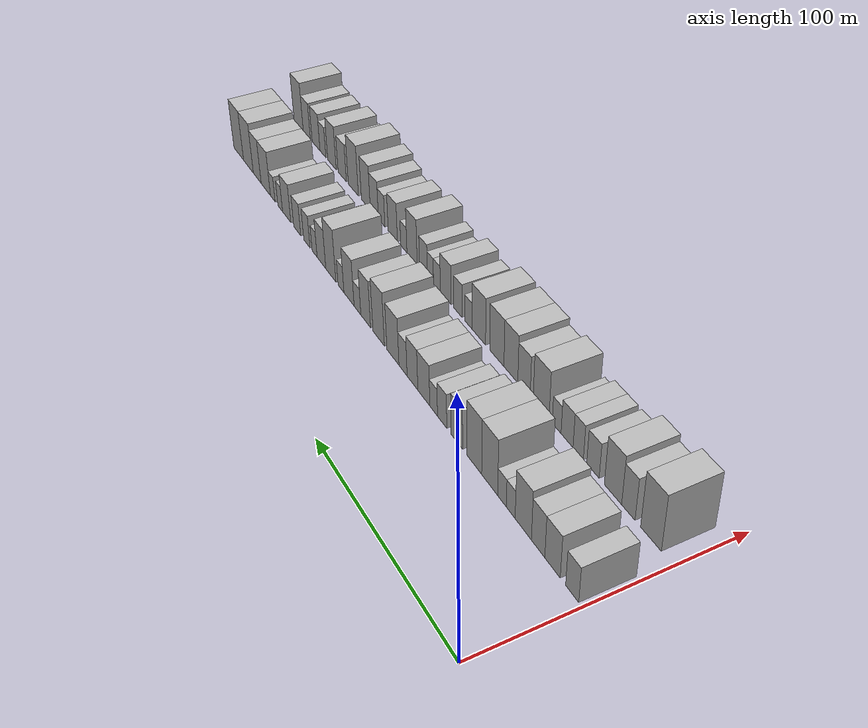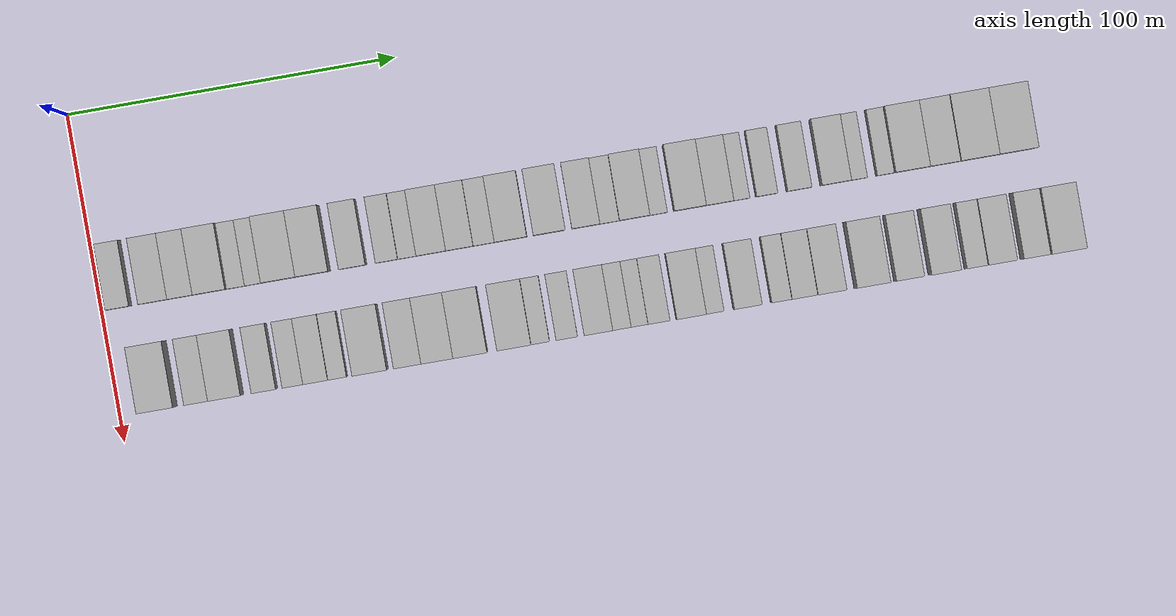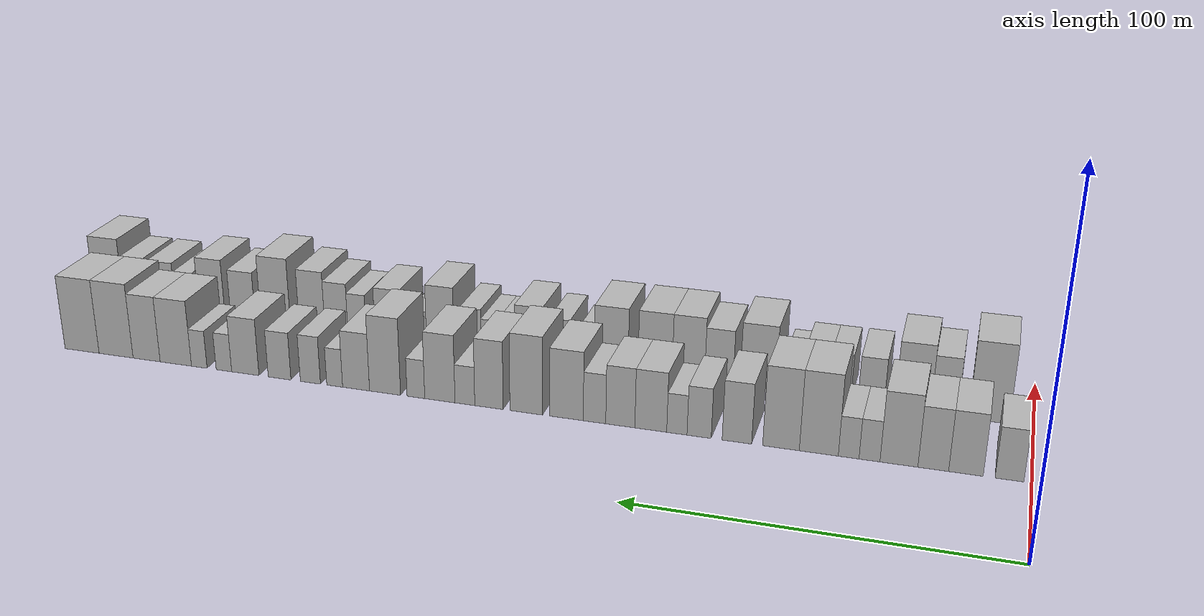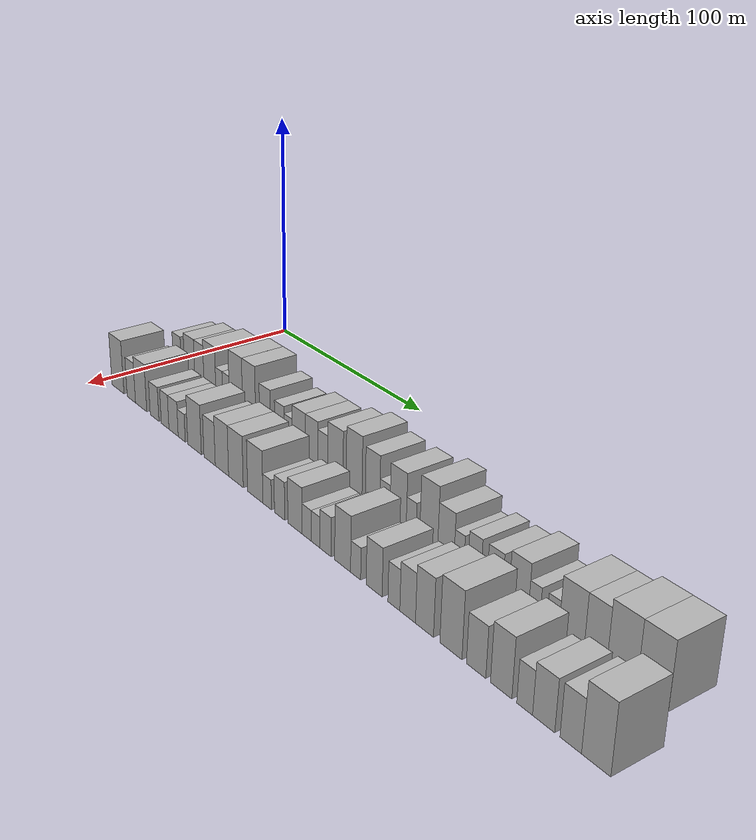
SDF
<sdf version="1.6">
 <world name="default">
  <model name="building_35">
   <static>1</static>
   <pose>50.0000 5.6101 0 0.000000 0.000000 0.000000</pose>
   <link name="link">
    <pose>0 0 7.50 0 0 0</pose>
    <collision name="collision"><geometry><box><size>20.0000 7.1993 15.0000</size></box></geometry></collision>
    <visual name="visual">
     <cast_shadows>0</cast_shadows>
     <geometry><box><size>20.0000 7.1993 15.0000</size></box></geometry>
     <material>
      <script>
       <uri>model://HANNAS_wall/materials/scripts</uri>
       <uri>model://HANNAS_wall/materials/textures</uri>
       <name>vrc/HANNAS_wall</name>
      </script>
     </material>
    </visual>
   </link>
  </model>
  <model name="building_36">
   <static>1</static>
   <pose>50.0000 16.6000 0 0.000000 0.000000 0.000000</pose>
   <link name="link">
    <pose>0 0 9.00 0 0 0</pose>
    <collision name="collision"><geometry><box><size>20.0000 8.7805 18.0000</size></box></geometry></collision>
    <visual name="visual">
     <cast_shadows>0</cast_shadows>
     <geometry><box><size>20.0000 8.7805 18.0000</size></box></geometry>
     <material>
      <script>
       <uri>model://HANNAS_wall/materials/scripts</uri>
       <uri>model://HANNAS_wall/materials/textures</uri>
       <name>vrc/HANNAS_wall</name>
      </script>
     </material>
    </visual>
   </link>
  </model>
  <model name="building_37">
   <static>1</static>
   <pose>50.0000 24.9277 0 0.000000 0.000000 0.000000</pose>
   <link name="link">
    <pose>0 0 9.00 0 0 0</pose>
    <collision name="collision"><geometry><box><size>20.0000 7.8750 18.0000</size></box></geometry></collision>
    <visual name="visual">
     <cast_shadows>0</cast_shadows>
     <geometry><box><size>20.0000 7.8750 18.0000</size></box></geometry>
     <material>
      <script>
       <uri>model://HANNAS_wall/materials/scripts</uri>
       <uri>model://HANNAS_wall/materials/textures</uri>
       <name>vrc/HANNAS_wall</name>
      </script>
     </material>
    </visual>
   </link>
  </model>
  <model name="building_38">
   <static>1</static>
   <pose>50.0000 33.7858 0 0.000000 0.000000 0.000000</pose>
   <link name="link">
    <pose>0 0 10.50 0 0 0</pose>
    <collision name="collision"><geometry><box><size>20.0000 9.8412 21.0000</size></box></geometry></collision>
    <visual name="visual">
     <cast_shadows>0</cast_shadows>
     <geometry><box><size>20.0000 9.8412 21.0000</size></box></geometry>
     <material>
      <script>
       <uri>model://HANNAS_wall/materials/scripts</uri>
       <uri>model://HANNAS_wall/materials/textures</uri>
       <name>vrc/HANNAS_wall</name>
      </script>
     </material>
    </visual>
   </link>
  </model>
  <model name="building_39">
   <static>1</static>
   <pose>50.0000 41.4476 0 0.000000 0.000000 0.000000</pose>
   <link name="link">
    <pose>0 0 6.00 0 0 0</pose>
    <collision name="collision"><geometry><box><size>20.0000 5.4823 12.0000</size></box></geometry></collision>
    <visual name="visual">
     <cast_shadows>0</cast_shadows>
     <geometry><box><size>20.0000 5.4823 12.0000</size></box></geometry>
     <material>
      <script>
       <uri>model://HANNAS_wall/materials/scripts</uri>
       <uri>model://HANNAS_wall/materials/textures</uri>
       <name>vrc/HANNAS_wall</name>
      </script>
     </material>
    </visual>
   </link>
  </model>
  <model name="building_40">
   <static>1</static>
   <pose>50.0000 46.9185 0 0.000000 0.000000 0.000000</pose>
   <link name="link">
    <pose>0 0 6.00 0 0 0</pose>
    <collision name="collision"><geometry><box><size>20.0000 5.4595 12.0000</size></box></geometry></collision>
    <visual name="visual">
     <cast_shadows>0</cast_shadows>
     <geometry><box><size>20.0000 5.4595 12.0000</size></box></geometry>
     <material>
      <script>
       <uri>model://HANNAS_wall/materials/scripts</uri>
       <uri>model://HANNAS_wall/materials/textures</uri>
       <name>vrc/HANNAS_wall</name>
      </script>
     </material>
    </visual>
   </link>
  </model>
  <model name="building_41">
   <static>1</static>
   <pose>50.0000 54.8365 0 0.000000 0.000000 0.000000</pose>
   <link name="link">
    <pose>0 0 12.00 0 0 0</pose>
    <collision name="collision"><geometry><box><size>20.0000 10.3765 24.0000</size></box></geometry></collision>
    <visual name="visual">
     <cast_shadows>0</cast_shadows>
     <geometry><box><size>20.0000 10.3765 24.0000</size></box></geometry>
     <material>
      <script>
       <uri>model://HANNAS_wall/materials/scripts</uri>
       <uri>model://HANNAS_wall/materials/textures</uri>
       <name>vrc/HANNAS_wall</name>
      </script>
     </material>
    </visual>
   </link>
  </model>
  <model name="building_42">
   <static>1</static>
   <pose>50.0000 64.9680 0 0.000000 0.000000 0.000000</pose>
   <link name="link">
    <pose>0 0 12.00 0 0 0</pose>
    <collision name="collision"><geometry><box><size>20.0000 9.8864 24.0000</size></box></geometry></collision>
    <visual name="visual">
     <cast_shadows>0</cast_shadows>
     <geometry><box><size>20.0000 9.8864 24.0000</size></box></geometry>
     <material>
      <script>
       <uri>model://HANNAS_wall/materials/scripts</uri>
       <uri>model://HANNAS_wall/materials/textures</uri>
       <name>vrc/HANNAS_wall</name>
      </script>
     </material>
    </visual>
   </link>
  </model>
  <model name="building_43">
   <static>1</static>
   <pose>50.0000 76.9545 0 0.000000 0.000000 0.000000</pose>
   <link name="link">
    <pose>0 0 9.00 0 0 0</pose>
    <collision name="collision"><geometry><box><size>20.0000 8.0864 18.0000</size></box></geometry></collision>
    <visual name="visual">
     <cast_shadows>0</cast_shadows>
     <geometry><box><size>20.0000 8.0864 18.0000</size></box></geometry>
     <material>
      <script>
       <uri>model://HANNAS_wall/materials/scripts</uri>
       <uri>model://HANNAS_wall/materials/textures</uri>
       <name>vrc/HANNAS_wall</name>
      </script>
     </material>
    </visual>
   </link>
  </model>
  <model name="building_44">
   <static>1</static>
   <pose>50.0000 87.3524 0 0.000000 0.000000 0.000000</pose>
   <link name="link">
    <pose>0 0 7.50 0 0 0</pose>
    <collision name="collision"><geometry><box><size>20.0000 6.7096 15.0000</size></box></geometry></collision>
    <visual name="visual">
     <cast_shadows>0</cast_shadows>
     <geometry><box><size>20.0000 6.7096 15.0000</size></box></geometry>
     <material>
      <script>
       <uri>model://HANNAS_wall/materials/scripts</uri>
       <uri>model://HANNAS_wall/materials/textures</uri>
       <name>vrc/HANNAS_wall</name>
      </script>
     </material>
    </visual>
   </link>
  </model>
  <model name="building_45">
   <static>1</static>
   <pose>50.0000 93.5424 0 0.000000 0.000000 0.000000</pose>
   <link name="link">
    <pose>0 0 6.00 0 0 0</pose>
    <collision name="collision"><geometry><box><size>20.0000 5.6704 12.0000</size></box></geometry></collision>
    <visual name="visual">
     <cast_shadows>0</cast_shadows>
     <geometry><box><size>20.0000 5.6704 12.0000</size></box></geometry>
     <material>
      <script>
       <uri>model://HANNAS_wall/materials/scripts</uri>
       <uri>model://HANNAS_wall/materials/textures</uri>
       <name>vrc/HANNAS_wall</name>
      </script>
     </material>
    </visual>
   </link>
  </model>
  <model name="building_46">
   <static>1</static>
   <pose>50.0000 100.8718 0 0.000000 0.000000 0.000000</pose>
   <link name="link">
    <pose>0 0 9.00 0 0 0</pose>
    <collision name="collision"><geometry><box><size>20.0000 8.9884 18.0000</size></box></geometry></collision>
    <visual name="visual">
     <cast_shadows>0</cast_shadows>
     <geometry><box><size>20.0000 8.9884 18.0000</size></box></geometry>
     <material>
      <script>
       <uri>model://HANNAS_wall/materials/scripts</uri>
       <uri>model://HANNAS_wall/materials/textures</uri>
       <name>vrc/HANNAS_wall</name>
      </script>
     </material>
    </visual>
   </link>
  </model>
  <model name="building_47">
   <static>1</static>
   <pose>50.0000 109.5122 0 0.000000 0.000000 0.000000</pose>
   <link name="link">
    <pose>0 0 9.00 0 0 0</pose>
    <collision name="collision"><geometry><box><size>20.0000 8.2924 18.0000</size></box></geometry></collision>
    <visual name="visual">
     <cast_shadows>0</cast_shadows>
     <geometry><box><size>20.0000 8.2924 18.0000</size></box></geometry>
     <material>
      <script>
       <uri>model://HANNAS_wall/materials/scripts</uri>
       <uri>model://HANNAS_wall/materials/textures</uri>
       <name>vrc/HANNAS_wall</name>
      </script>
     </material>
    </visual>
   </link>
  </model>
  <model name="building_48">
   <static>1</static>
   <pose>50.0000 116.8847 0 0.000000 0.000000 0.000000</pose>
   <link name="link">
    <pose>0 0 7.50 0 0 0</pose>
    <collision name="collision"><geometry><box><size>20.0000 6.4528 15.0000</size></box></geometry></collision>
    <visual name="visual">
     <cast_shadows>0</cast_shadows>
     <geometry><box><size>20.0000 6.4528 15.0000</size></box></geometry>
     <material>
      <script>
       <uri>model://HANNAS_wall/materials/scripts</uri>
       <uri>model://HANNAS_wall/materials/textures</uri>
       <name>vrc/HANNAS_wall</name>
      </script>
     </material>
    </visual>
   </link>
  </model>
  <model name="building_49">
   <static>1</static>
   <pose>50.0000 125.0088 0 0.000000 0.000000 0.000000</pose>
   <link name="link">
    <pose>0 0 10.50 0 0 0</pose>
    <collision name="collision"><geometry><box><size>20.0000 9.7953 21.0000</size></box></geometry></collision>
    <visual name="visual">
     <cast_shadows>0</cast_shadows>
     <geometry><box><size>20.0000 9.7953 21.0000</size></box></geometry>
     <material>
      <script>
       <uri>model://HANNAS_wall/materials/scripts</uri>
       <uri>model://HANNAS_wall/materials/textures</uri>
       <name>vrc/HANNAS_wall</name>
      </script>
     </material>
    </visual>
   </link>
  </model>
  <model name="building_50">
   <static>1</static>
   <pose>50.0000 136.7329 0 0.000000 0.000000 0.000000</pose>
   <link name="link">
    <pose>0 0 12.00 0 0 0</pose>
    <collision name="collision"><geometry><box><size>20.0000 9.6528 24.0000</size></box></geometry></collision>
    <visual name="visual">
     <cast_shadows>0</cast_shadows>
     <geometry><box><size>20.0000 9.6528 24.0000</size></box></geometry>
     <material>
      <script>
       <uri>model://HANNAS_wall/materials/scripts</uri>
       <uri>model://HANNAS_wall/materials/textures</uri>
       <name>vrc/HANNAS_wall</name>
      </script>
     </material>
    </visual>
   </link>
  </model>
  <model name="building_51">
   <static>1</static>
   <pose>50.0000 147.7941 0 0.000000 0.000000 0.000000</pose>
   <link name="link">
    <pose>0 0 10.50 0 0 0</pose>
    <collision name="collision"><geometry><box><size>20.0000 8.4696 21.0000</size></box></geometry></collision>
    <visual name="visual">
     <cast_shadows>0</cast_shadows>
     <geometry><box><size>20.0000 8.4696 21.0000</size></box></geometry>
     <material>
      <script>
       <uri>model://HANNAS_wall/materials/scripts</uri>
       <uri>model://HANNAS_wall/materials/textures</uri>
       <name>vrc/HANNAS_wall</name>
      </script>
     </material>
    </visual>
   </link>
  </model>
  <model name="building_52">
   <static>1</static>
   <pose>50.0000 154.9995 0 0.000000 0.000000 0.000000</pose>
   <link name="link">
    <pose>0 0 6.00 0 0 0</pose>
    <collision name="collision"><geometry><box><size>20.0000 5.9412 12.0000</size></box></geometry></collision>
    <visual name="visual">
     <cast_shadows>0</cast_shadows>
     <geometry><box><size>20.0000 5.9412 12.0000</size></box></geometry>
     <material>
      <script>
       <uri>model://HANNAS_wall/materials/scripts</uri>
       <uri>model://HANNAS_wall/materials/textures</uri>
       <name>vrc/HANNAS_wall</name>
      </script>
     </material>
    </visual>
   </link>
  </model>
  <model name="building_53">
   <static>1</static>
   <pose>50.0000 162.5685 0 0.000000 0.000000 0.000000</pose>
   <link name="link">
    <pose>0 0 10.50 0 0 0</pose>
    <collision name="collision"><geometry><box><size>20.0000 9.1968 21.0000</size></box></geometry></collision>
    <visual name="visual">
     <cast_shadows>0</cast_shadows>
     <geometry><box><size>20.0000 9.1968 21.0000</size></box></geometry>
     <material>
      <script>
       <uri>model://HANNAS_wall/materials/scripts</uri>
       <uri>model://HANNAS_wall/materials/textures</uri>
       <name>vrc/HANNAS_wall</name>
      </script>
     </material>
    </visual>
   </link>
  </model>
  <model name="building_54">
   <static>1</static>
   <pose>50.0000 169.8707 0 0.000000 0.000000 0.000000</pose>
   <link name="link">
    <pose>0 0 6.00 0 0 0</pose>
    <collision name="collision"><geometry><box><size>20.0000 5.4076 12.0000</size></box></geometry></collision>
    <visual name="visual">
     <cast_shadows>0</cast_shadows>
     <geometry><box><size>20.0000 5.4076 12.0000</size></box></geometry>
     <material>
      <script>
       <uri>model://HANNAS_wall/materials/scripts</uri>
       <uri>model://HANNAS_wall/materials/textures</uri>
       <name>vrc/HANNAS_wall</name>
      </script>
     </material>
    </visual>
   </link>
  </model>
  <model name="building_55">
   <static>1</static>
   <pose>50.0000 179.3755 0 0.000000 0.000000 0.000000</pose>
   <link name="link">
    <pose>0 0 12.00 0 0 0</pose>
    <collision name="collision"><geometry><box><size>20.0000 9.6021 24.0000</size></box></geometry></collision>
    <visual name="visual">
     <cast_shadows>0</cast_shadows>
     <geometry><box><size>20.0000 9.6021 24.0000</size></box></geometry>
     <material>
      <script>
       <uri>model://HANNAS_wall/materials/scripts</uri>
       <uri>model://HANNAS_wall/materials/textures</uri>
       <name>vrc/HANNAS_wall</name>
      </script>
     </material>
    </visual>
   </link>
  </model>
  <model name="building_56">
   <static>1</static>
   <pose>50.0000 188.3957 0 0.000000 0.000000 0.000000</pose>
   <link name="link">
    <pose>0 0 9.00 0 0 0</pose>
    <collision name="collision"><geometry><box><size>20.0000 8.4381 18.0000</size></box></geometry></collision>
    <visual name="visual">
     <cast_shadows>0</cast_shadows>
     <geometry><box><size>20.0000 8.4381 18.0000</size></box></geometry>
     <material>
      <script>
       <uri>model://HANNAS_wall/materials/scripts</uri>
       <uri>model://HANNAS_wall/materials/textures</uri>
       <name>vrc/HANNAS_wall</name>
      </script>
     </material>
    </visual>
   </link>
  </model>
  <model name="building_57">
   <static>1</static>
   <pose>50.0000 195.1093 0 0.000000 0.000000 0.000000</pose>
   <link name="link">
    <pose>0 0 6.00 0 0 0</pose>
    <collision name="collision"><geometry><box><size>20.0000 4.9891 12.0000</size></box></geometry></collision>
    <visual name="visual">
     <cast_shadows>0</cast_shadows>
     <geometry><box><size>20.0000 4.9891 12.0000</size></box></geometry>
     <material>
      <script>
       <uri>model://HANNAS_wall/materials/scripts</uri>
       <uri>model://HANNAS_wall/materials/textures</uri>
       <name>vrc/HANNAS_wall</name>
      </script>
     </material>
    </visual>
   </link>
  </model>
  <model name="building_58">
   <static>1</static>
   <pose>50.0000 202.8008 0 0.000000 0.000000 0.000000</pose>
   <link name="link">
    <pose>0 0 7.50 0 0 0</pose>
    <collision name="collision"><geometry><box><size>20.0000 6.3939 15.0000</size></box></geometry></collision>
    <visual name="visual">
     <cast_shadows>0</cast_shadows>
     <geometry><box><size>20.0000 6.3939 15.0000</size></box></geometry>
     <material>
      <script>
       <uri>model://HANNAS_wall/materials/scripts</uri>
       <uri>model://HANNAS_wall/materials/textures</uri>
       <name>vrc/HANNAS_wall</name>
      </script>
     </material>
    </visual>
   </link>
  </model>
  <model name="building_59">
   <static>1</static>
   <pose>50.0000 212.6606 0 0.000000 0.000000 0.000000</pose>
   <link name="link">
    <pose>0 0 7.50 0 0 0</pose>
    <collision name="collision"><geometry><box><size>20.0000 7.3258 15.0000</size></box></geometry></collision>
    <visual name="visual">
     <cast_shadows>0</cast_shadows>
     <geometry><box><size>20.0000 7.3258 15.0000</size></box></geometry>
     <material>
      <script>
       <uri>model://HANNAS_wall/materials/scripts</uri>
       <uri>model://HANNAS_wall/materials/textures</uri>
       <name>vrc/HANNAS_wall</name>
      </script>
     </material>
    </visual>
   </link>
  </model>
  <model name="building_60">
   <static>1</static>
   <pose>50.0000 223.7670 0 0.000000 0.000000 0.000000</pose>
   <link name="link">
    <pose>0 0 9.00 0 0 0</pose>
    <collision name="collision"><geometry><box><size>20.0000 8.8869 18.0000</size></box></geometry></collision>
    <visual name="visual">
     <cast_shadows>0</cast_shadows>
     <geometry><box><size>20.0000 8.8869 18.0000</size></box></geometry>
     <material>
      <script>
       <uri>model://HANNAS_wall/materials/scripts</uri>
       <uri>model://HANNAS_wall/materials/textures</uri>
       <name>vrc/HANNAS_wall</name>
      </script>
     </material>
    </visual>
   </link>
  </model>
  <model name="building_61">
   <static>1</static>
   <pose>50.0000 230.7585 0 0.000000 0.000000 0.000000</pose>
   <link name="link">
    <pose>0 0 6.00 0 0 0</pose>
    <collision name="collision"><geometry><box><size>20.0000 5.0961 12.0000</size></box></geometry></collision>
    <visual name="visual">
     <cast_shadows>0</cast_shadows>
     <geometry><box><size>20.0000 5.0961 12.0000</size></box></geometry>
     <material>
      <script>
       <uri>model://HANNAS_wall/materials/scripts</uri>
       <uri>model://HANNAS_wall/materials/textures</uri>
       <name>vrc/HANNAS_wall</name>
      </script>
     </material>
    </visual>
   </link>
  </model>
  <model name="building_62">
   <static>1</static>
   <pose>50.0000 238.8910 0 0.000000 0.000000 0.000000</pose>
   <link name="link">
    <pose>0 0 6.00 0 0 0</pose>
    <collision name="collision"><geometry><box><size>20.0000 5.1690 12.0000</size></box></geometry></collision>
    <visual name="visual">
     <cast_shadows>0</cast_shadows>
     <geometry><box><size>20.0000 5.1690 12.0000</size></box></geometry>
     <material>
      <script>
       <uri>model://HANNAS_wall/materials/scripts</uri>
       <uri>model://HANNAS_wall/materials/textures</uri>
       <name>vrc/HANNAS_wall</name>
      </script>
     </material>
    </visual>
   </link>
  </model>
  <model name="building_63">
   <static>1</static>
   <pose>50.0000 246.7167 0 0.000000 0.000000 0.000000</pose>
   <link name="link">
    <pose>0 0 10.50 0 0 0</pose>
    <collision name="collision"><geometry><box><size>20.0000 10.4825 21.0000</size></box></geometry></collision>
    <visual name="visual">
     <cast_shadows>0</cast_shadows>
     <geometry><box><size>20.0000 10.4825 21.0000</size></box></geometry>
     <material>
      <script>
       <uri>model://HANNAS_wall/materials/scripts</uri>
       <uri>model://HANNAS_wall/materials/textures</uri>
       <name>vrc/HANNAS_wall</name>
      </script>
     </material>
    </visual>
   </link>
  </model>
  <model name="building_64">
   <static>1</static>
   <pose>50.0000 256.5329 0 0.000000 0.000000 0.000000</pose>
   <link name="link">
    <pose>0 0 10.50 0 0 0</pose>
    <collision name="collision"><geometry><box><size>20.0000 9.1499 21.0000</size></box></geometry></collision>
    <visual name="visual">
     <cast_shadows>0</cast_shadows>
     <geometry><box><size>20.0000 9.1499 21.0000</size></box></geometry>
     <material>
      <script>
       <uri>model://HANNAS_wall/materials/scripts</uri>
       <uri>model://HANNAS_wall/materials/textures</uri>
       <name>vrc/HANNAS_wall</name>
      </script>
     </material>
    </visual>
   </link>
  </model>
  <model name="building_65">
   <static>1</static>
   <pose>50.0000 266.9230 0 0.000000 0.000000 0.000000</pose>
   <link name="link">
    <pose>0 0 12.00 0 0 0</pose>
    <collision name="collision"><geometry><box><size>20.0000 11.6303 24.0000</size></box></geometry></collision>
    <visual name="visual">
     <cast_shadows>0</cast_shadows>
     <geometry><box><size>20.0000 11.6303 24.0000</size></box></geometry>
     <material>
      <script>
       <uri>model://HANNAS_wall/materials/scripts</uri>
       <uri>model://HANNAS_wall/materials/textures</uri>
       <name>vrc/HANNAS_wall</name>
      </script>
     </material>
    </visual>
   </link>
  </model>
  <model name="building_66">
   <static>1</static>
   <pose>50.0000 278.6214 0 0.000000 0.000000 0.000000</pose>
   <link name="link">
    <pose>0 0 12.00 0 0 0</pose>
    <collision name="collision"><geometry><box><size>20.0000 11.7666 24.0000</size></box></geometry></collision>
    <visual name="visual">
     <cast_shadows>0</cast_shadows>
     <geometry><box><size>20.0000 11.7666 24.0000</size></box></geometry>
     <material>
      <script>
       <uri>model://HANNAS_wall/materials/scripts</uri>
       <uri>model://HANNAS_wall/materials/textures</uri>
       <name>vrc/HANNAS_wall</name>
      </script>
     </material>
    </visual>
   </link>
  </model>
  <model name="building_96">
   <static>1</static>
   <pose>82.0000 12.0418 0 0.000000 0.000000 0.000000</pose>
   <link name="link">
    <pose>0 0 12.00 0 0 0</pose>
    <collision name="collision"><geometry><box><size>20.0000 11.0157 24.0000</size></box></geometry></collision>
    <visual name="visual">
     <cast_shadows>0</cast_shadows>
     <geometry><box><size>20.0000 11.0157 24.0000</size></box></geometry>
     <material>
      <script>
       <uri>model://HANNAS_wall/materials/scripts</uri>
       <uri>model://HANNAS_wall/materials/textures</uri>
       <name>vrc/HANNAS_wall</name>
      </script>
     </material>
    </visual>
   </link>
  </model>
  <model name="building_97">
   <static>1</static>
   <pose>82.0000 24.2548 0 0.000000 0.000000 0.000000</pose>
   <link name="link">
    <pose>0 0 9.00 0 0 0</pose>
    <collision name="collision"><geometry><box><size>20.0000 7.4104 18.0000</size></box></geometry></collision>
    <visual name="visual">
     <cast_shadows>0</cast_shadows>
     <geometry><box><size>20.0000 7.4104 18.0000</size></box></geometry>
     <material>
      <script>
       <uri>model://HANNAS_wall/materials/scripts</uri>
       <uri>model://HANNAS_wall/materials/textures</uri>
       <name>vrc/HANNAS_wall</name>
      </script>
     </material>
    </visual>
   </link>
  </model>
  <model name="building_98">
   <static>1</static>
   <pose>82.0000 32.8803 0 0.000000 0.000000 0.000000</pose>
   <link name="link">
    <pose>0 0 10.50 0 0 0</pose>
    <collision name="collision"><geometry><box><size>20.0000 9.8405 21.0000</size></box></geometry></collision>
    <visual name="visual">
     <cast_shadows>0</cast_shadows>
     <geometry><box><size>20.0000 9.8405 21.0000</size></box></geometry>
     <material>
      <script>
       <uri>model://HANNAS_wall/materials/scripts</uri>
       <uri>model://HANNAS_wall/materials/textures</uri>
       <name>vrc/HANNAS_wall</name>
      </script>
     </material>
    </visual>
   </link>
  </model>
  <model name="building_99">
   <static>1</static>
   <pose>82.0000 44.4847 0 0.000000 0.000000 0.000000</pose>
   <link name="link">
    <pose>0 0 7.50 0 0 0</pose>
    <collision name="collision"><geometry><box><size>20.0000 7.3682 15.0000</size></box></geometry></collision>
    <visual name="visual">
     <cast_shadows>0</cast_shadows>
     <geometry><box><size>20.0000 7.3682 15.0000</size></box></geometry>
     <material>
      <script>
       <uri>model://HANNAS_wall/materials/scripts</uri>
       <uri>model://HANNAS_wall/materials/textures</uri>
       <name>vrc/HANNAS_wall</name>
      </script>
     </material>
    </visual>
   </link>
  </model>
  <model name="building_100">
   <static>1</static>
   <pose>82.0000 53.3110 0 0.000000 0.000000 0.000000</pose>
   <link name="link">
    <pose>0 0 7.50 0 0 0</pose>
    <collision name="collision"><geometry><box><size>20.0000 6.2844 15.0000</size></box></geometry></collision>
    <visual name="visual">
     <cast_shadows>0</cast_shadows>
     <geometry><box><size>20.0000 6.2844 15.0000</size></box></geometry>
     <material>
      <script>
       <uri>model://HANNAS_wall/materials/scripts</uri>
       <uri>model://HANNAS_wall/materials/textures</uri>
       <name>vrc/HANNAS_wall</name>
      </script>
     </material>
    </visual>
   </link>
  </model>
  <model name="building_101">
   <static>1</static>
   <pose>82.0000 60.1928 0 0.000000 0.000000 0.000000</pose>
   <link name="link">
    <pose>0 0 7.50 0 0 0</pose>
    <collision name="collision"><geometry><box><size>20.0000 7.4792 15.0000</size></box></geometry></collision>
    <visual name="visual">
     <cast_shadows>0</cast_shadows>
     <geometry><box><size>20.0000 7.4792 15.0000</size></box></geometry>
     <material>
      <script>
       <uri>model://HANNAS_wall/materials/scripts</uri>
       <uri>model://HANNAS_wall/materials/textures</uri>
       <name>vrc/HANNAS_wall</name>
      </script>
     </material>
    </visual>
   </link>
  </model>
  <model name="building_102">
   <static>1</static>
   <pose>82.0000 66.7406 0 0.000000 0.000000 0.000000</pose>
   <link name="link">
    <pose>0 0 6.00 0 0 0</pose>
    <collision name="collision"><geometry><box><size>20.0000 5.6164 12.0000</size></box></geometry></collision>
    <visual name="visual">
     <cast_shadows>0</cast_shadows>
     <geometry><box><size>20.0000 5.6164 12.0000</size></box></geometry>
     <material>
      <script>
       <uri>model://HANNAS_wall/materials/scripts</uri>
       <uri>model://HANNAS_wall/materials/textures</uri>
       <name>vrc/HANNAS_wall</name>
      </script>
     </material>
    </visual>
   </link>
  </model>
  <model name="building_103">
   <static>1</static>
   <pose>82.0000 76.7727 0 0.000000 0.000000 0.000000</pose>
   <link name="link">
    <pose>0 0 10.50 0 0 0</pose>
    <collision name="collision"><geometry><box><size>20.0000 10.4478 21.0000</size></box></geometry></collision>
    <visual name="visual">
     <cast_shadows>0</cast_shadows>
     <geometry><box><size>20.0000 10.4478 21.0000</size></box></geometry>
     <material>
      <script>
       <uri>model://HANNAS_wall/materials/scripts</uri>
       <uri>model://HANNAS_wall/materials/textures</uri>
       <name>vrc/HANNAS_wall</name>
      </script>
     </material>
    </visual>
   </link>
  </model>
  <model name="building_104">
   <static>1</static>
   <pose>82.0000 88.1966 0 0.000000 0.000000 0.000000</pose>
   <link name="link">
    <pose>0 0 9.00 0 0 0</pose>
    <collision name="collision"><geometry><box><size>20.0000 8.4000 18.0000</size></box></geometry></collision>
    <visual name="visual">
     <cast_shadows>0</cast_shadows>
     <geometry><box><size>20.0000 8.4000 18.0000</size></box></geometry>
     <material>
      <script>
       <uri>model://HANNAS_wall/materials/scripts</uri>
       <uri>model://HANNAS_wall/materials/textures</uri>
       <name>vrc/HANNAS_wall</name>
      </script>
     </material>
    </visual>
   </link>
  </model>
  <model name="building_105">
   <static>1</static>
   <pose>82.0000 97.2258 0 0.000000 0.000000 0.000000</pose>
   <link name="link">
    <pose>0 0 10.50 0 0 0</pose>
    <collision name="collision"><geometry><box><size>20.0000 9.6583 21.0000</size></box></geometry></collision>
    <visual name="visual">
     <cast_shadows>0</cast_shadows>
     <geometry><box><size>20.0000 9.6583 21.0000</size></box></geometry>
     <material>
      <script>
       <uri>model://HANNAS_wall/materials/scripts</uri>
       <uri>model://HANNAS_wall/materials/textures</uri>
       <name>vrc/HANNAS_wall</name>
      </script>
     </material>
    </visual>
   </link>
  </model>
  <model name="building_106">
   <static>1</static>
   <pose>82.0000 107.1942 0 0.000000 0.000000 0.000000</pose>
   <link name="link">
    <pose>0 0 10.50 0 0 0</pose>
    <collision name="collision"><geometry><box><size>20.0000 10.2786 21.0000</size></box></geometry></collision>
    <visual name="visual">
     <cast_shadows>0</cast_shadows>
     <geometry><box><size>20.0000 10.2786 21.0000</size></box></geometry>
     <material>
      <script>
       <uri>model://HANNAS_wall/materials/scripts</uri>
       <uri>model://HANNAS_wall/materials/textures</uri>
       <name>vrc/HANNAS_wall</name>
      </script>
     </material>
    </visual>
   </link>
  </model>
  <model name="building_107">
   <static>1</static>
   <pose>82.0000 120.4725 0 0.000000 0.000000 0.000000</pose>
   <link name="link">
    <pose>0 0 10.50 0 0 0</pose>
    <collision name="collision"><geometry><box><size>20.0000 10.2781 21.0000</size></box></geometry></collision>
    <visual name="visual">
     <cast_shadows>0</cast_shadows>
     <geometry><box><size>20.0000 10.2781 21.0000</size></box></geometry>
     <material>
      <script>
       <uri>model://HANNAS_wall/materials/scripts</uri>
       <uri>model://HANNAS_wall/materials/textures</uri>
       <name>vrc/HANNAS_wall</name>
      </script>
     </material>
    </visual>
   </link>
  </model>
  <model name="building_108">
   <static>1</static>
   <pose>82.0000 128.4003 0 0.000000 0.000000 0.000000</pose>
   <link name="link">
    <pose>0 0 6.00 0 0 0</pose>
    <collision name="collision"><geometry><box><size>20.0000 5.5776 12.0000</size></box></geometry></collision>
    <visual name="visual">
     <cast_shadows>0</cast_shadows>
     <geometry><box><size>20.0000 5.5776 12.0000</size></box></geometry>
     <material>
      <script>
       <uri>model://HANNAS_wall/materials/scripts</uri>
       <uri>model://HANNAS_wall/materials/textures</uri>
       <name>vrc/HANNAS_wall</name>
      </script>
     </material>
    </visual>
   </link>
  </model>
  <model name="building_109">
   <static>1</static>
   <pose>82.0000 136.4458 0 0.000000 0.000000 0.000000</pose>
   <link name="link">
    <pose>0 0 7.50 0 0 0</pose>
    <collision name="collision"><geometry><box><size>20.0000 6.5135 15.0000</size></box></geometry></collision>
    <visual name="visual">
     <cast_shadows>0</cast_shadows>
     <geometry><box><size>20.0000 6.5135 15.0000</size></box></geometry>
     <material>
      <script>
       <uri>model://HANNAS_wall/materials/scripts</uri>
       <uri>model://HANNAS_wall/materials/textures</uri>
       <name>vrc/HANNAS_wall</name>
      </script>
     </material>
    </visual>
   </link>
  </model>
  <model name="building_110">
   <static>1</static>
   <pose>82.0000 146.0440 0 0.000000 0.000000 0.000000</pose>
   <link name="link">
    <pose>0 0 9.00 0 0 0</pose>
    <collision name="collision"><geometry><box><size>20.0000 8.6828 18.0000</size></box></geometry></collision>
    <visual name="visual">
     <cast_shadows>0</cast_shadows>
     <geometry><box><size>20.0000 8.6828 18.0000</size></box></geometry>
     <material>
      <script>
       <uri>model://HANNAS_wall/materials/scripts</uri>
       <uri>model://HANNAS_wall/materials/textures</uri>
       <name>vrc/HANNAS_wall</name>
      </script>
     </material>
    </visual>
   </link>
  </model>
  <model name="building_111">
   <static>1</static>
   <pose>82.0000 153.1938 0 0.000000 0.000000 0.000000</pose>
   <link name="link">
    <pose>0 0 6.00 0 0 0</pose>
    <collision name="collision"><geometry><box><size>20.0000 5.6166 12.0000</size></box></geometry></collision>
    <visual name="visual">
     <cast_shadows>0</cast_shadows>
     <geometry><box><size>20.0000 5.6166 12.0000</size></box></geometry>
     <material>
      <script>
       <uri>model://HANNAS_wall/materials/scripts</uri>
       <uri>model://HANNAS_wall/materials/textures</uri>
       <name>vrc/HANNAS_wall</name>
      </script>
     </material>
    </visual>
   </link>
  </model>
  <model name="building_112">
   <static>1</static>
   <pose>82.0000 158.5435 0 0.000000 0.000000 0.000000</pose>
   <link name="link">
    <pose>0 0 6.00 0 0 0</pose>
    <collision name="collision"><geometry><box><size>20.0000 5.0829 12.0000</size></box></geometry></collision>
    <visual name="visual">
     <cast_shadows>0</cast_shadows>
     <geometry><box><size>20.0000 5.0829 12.0000</size></box></geometry>
     <material>
      <script>
       <uri>model://HANNAS_wall/materials/scripts</uri>
       <uri>model://HANNAS_wall/materials/textures</uri>
       <name>vrc/HANNAS_wall</name>
      </script>
     </material>
    </visual>
   </link>
  </model>
  <model name="building_113">
   <static>1</static>
   <pose>82.0000 164.4117 0 0.000000 0.000000 0.000000</pose>
   <link name="link">
    <pose>0 0 7.50 0 0 0</pose>
    <collision name="collision"><geometry><box><size>20.0000 6.6536 15.0000</size></box></geometry></collision>
    <visual name="visual">
     <cast_shadows>0</cast_shadows>
     <geometry><box><size>20.0000 6.6536 15.0000</size></box></geometry>
     <material>
      <script>
       <uri>model://HANNAS_wall/materials/scripts</uri>
       <uri>model://HANNAS_wall/materials/textures</uri>
       <name>vrc/HANNAS_wall</name>
      </script>
     </material>
    </visual>
   </link>
  </model>
  <model name="building_114">
   <static>1</static>
   <pose>82.0000 174.2079 0 0.000000 0.000000 0.000000</pose>
   <link name="link">
    <pose>0 0 10.50 0 0 0</pose>
    <collision name="collision"><geometry><box><size>20.0000 8.9388 21.0000</size></box></geometry></collision>
    <visual name="visual">
     <cast_shadows>0</cast_shadows>
     <geometry><box><size>20.0000 8.9388 21.0000</size></box></geometry>
     <material>
      <script>
       <uri>model://HANNAS_wall/materials/scripts</uri>
       <uri>model://HANNAS_wall/materials/textures</uri>
       <name>vrc/HANNAS_wall</name>
      </script>
     </material>
    </visual>
   </link>
  </model>
  <model name="building_115">
   <static>1</static>
   <pose>82.0000 181.4320 0 0.000000 0.000000 0.000000</pose>
   <link name="link">
    <pose>0 0 6.00 0 0 0</pose>
    <collision name="collision"><geometry><box><size>20.0000 5.5094 12.0000</size></box></geometry></collision>
    <visual name="visual">
     <cast_shadows>0</cast_shadows>
     <geometry><box><size>20.0000 5.5094 12.0000</size></box></geometry>
     <material>
      <script>
       <uri>model://HANNAS_wall/materials/scripts</uri>
       <uri>model://HANNAS_wall/materials/textures</uri>
       <name>vrc/HANNAS_wall</name>
      </script>
     </material>
    </visual>
   </link>
  </model>
  <model name="building_116">
   <static>1</static>
   <pose>82.0000 191.3944 0 0.000000 0.000000 0.000000</pose>
   <link name="link">
    <pose>0 0 9.00 0 0 0</pose>
    <collision name="collision"><geometry><box><size>20.0000 8.4153 18.0000</size></box></geometry></collision>
    <visual name="visual">
     <cast_shadows>0</cast_shadows>
     <geometry><box><size>20.0000 8.4153 18.0000</size></box></geometry>
     <material>
      <script>
       <uri>model://HANNAS_wall/materials/scripts</uri>
       <uri>model://HANNAS_wall/materials/textures</uri>
       <name>vrc/HANNAS_wall</name>
      </script>
     </material>
    </visual>
   </link>
  </model>
  <model name="building_117">
   <static>1</static>
   <pose>82.0000 201.6363 0 0.000000 0.000000 0.000000</pose>
   <link name="link">
    <pose>0 0 7.50 0 0 0</pose>
    <collision name="collision"><geometry><box><size>20.0000 6.0686 15.0000</size></box></geometry></collision>
    <visual name="visual">
     <cast_shadows>0</cast_shadows>
     <geometry><box><size>20.0000 6.0686 15.0000</size></box></geometry>
     <material>
      <script>
       <uri>model://HANNAS_wall/materials/scripts</uri>
       <uri>model://HANNAS_wall/materials/textures</uri>
       <name>vrc/HANNAS_wall</name>
      </script>
     </material>
    </visual>
   </link>
  </model>
  <model name="building_118">
   <static>1</static>
   <pose>82.0000 208.5441 0 0.000000 0.000000 0.000000</pose>
   <link name="link">
    <pose>0 0 9.00 0 0 0</pose>
    <collision name="collision"><geometry><box><size>20.0000 7.7471 18.0000</size></box></geometry></collision>
    <visual name="visual">
     <cast_shadows>0</cast_shadows>
     <geometry><box><size>20.0000 7.7471 18.0000</size></box></geometry>
     <material>
      <script>
       <uri>model://HANNAS_wall/materials/scripts</uri>
       <uri>model://HANNAS_wall/materials/textures</uri>
       <name>vrc/HANNAS_wall</name>
      </script>
     </material>
    </visual>
   </link>
  </model>
  <model name="building_119">
   <static>1</static>
   <pose>82.0000 216.7654 0 0.000000 0.000000 0.000000</pose>
   <link name="link">
    <pose>0 0 10.50 0 0 0</pose>
    <collision name="collision"><geometry><box><size>20.0000 8.6956 21.0000</size></box></geometry></collision>
    <visual name="visual">
     <cast_shadows>0</cast_shadows>
     <geometry><box><size>20.0000 8.6956 21.0000</size></box></geometry>
     <material>
      <script>
       <uri>model://HANNAS_wall/materials/scripts</uri>
       <uri>model://HANNAS_wall/materials/textures</uri>
       <name>vrc/HANNAS_wall</name>
      </script>
     </material>
    </visual>
   </link>
  </model>
  <model name="building_120">
   <static>1</static>
   <pose>82.0000 229.1825 0 0.000000 0.000000 0.000000</pose>
   <link name="link">
    <pose>0 0 12.00 0 0 0</pose>
    <collision name="collision"><geometry><box><size>20.0000 10.1386 24.0000</size></box></geometry></collision>
    <visual name="visual">
     <cast_shadows>0</cast_shadows>
     <geometry><box><size>20.0000 10.1386 24.0000</size></box></geometry>
     <material>
      <script>
       <uri>model://HANNAS_wall/materials/scripts</uri>
       <uri>model://HANNAS_wall/materials/textures</uri>
       <name>vrc/HANNAS_wall</name>
      </script>
     </material>
    </visual>
   </link>
  </model>
  <model name="building_121">
   <static>1</static>
   <pose>82.0000 240.5077 0 0.000000 0.000000 0.000000</pose>
   <link name="link">
    <pose>0 0 9.00 0 0 0</pose>
    <collision name="collision"><geometry><box><size>20.0000 8.5117 18.0000</size></box></geometry></collision>
    <visual name="visual">
     <cast_shadows>0</cast_shadows>
     <geometry><box><size>20.0000 8.5117 18.0000</size></box></geometry>
     <material>
      <script>
       <uri>model://HANNAS_wall/materials/scripts</uri>
       <uri>model://HANNAS_wall/materials/textures</uri>
       <name>vrc/HANNAS_wall</name>
      </script>
     </material>
    </visual>
   </link>
  </model>
  <model name="building_122">
   <static>1</static>
   <pose>82.0000 251.2654 0 0.000000 0.000000 0.000000</pose>
   <link name="link">
    <pose>0 0 10.50 0 0 0</pose>
    <collision name="collision"><geometry><box><size>20.0000 9.0039 21.0000</size></box></geometry></collision>
    <visual name="visual">
     <cast_shadows>0</cast_shadows>
     <geometry><box><size>20.0000 9.0039 21.0000</size></box></geometry>
     <material>
      <script>
       <uri>model://HANNAS_wall/materials/scripts</uri>
       <uri>model://HANNAS_wall/materials/textures</uri>
       <name>vrc/HANNAS_wall</name>
      </script>
     </material>
    </visual>
   </link>
  </model>
  <model name="building_123">
   <static>1</static>
   <pose>82.0000 260.9679 0 0.000000 0.000000 0.000000</pose>
   <link name="link">
    <pose>0 0 7.50 0 0 0</pose>
    <collision name="collision"><geometry><box><size>20.0000 6.4011 15.0000</size></box></geometry></collision>
    <visual name="visual">
     <cast_shadows>0</cast_shadows>
     <geometry><box><size>20.0000 6.4011 15.0000</size></box></geometry>
     <material>
      <script>
       <uri>model://HANNAS_wall/materials/scripts</uri>
       <uri>model://HANNAS_wall/materials/textures</uri>
       <name>vrc/HANNAS_wall</name>
      </script>
     </material>
    </visual>
   </link>
  </model>
  <model name="building_124">
   <static>1</static>
   <pose>82.0000 268.5134 0 0.000000 0.000000 0.000000</pose>
   <link name="link">
    <pose>0 0 9.00 0 0 0</pose>
    <collision name="collision"><geometry><box><size>20.0000 8.6898 18.0000</size></box></geometry></collision>
    <visual name="visual">
     <cast_shadows>0</cast_shadows>
     <geometry><box><size>20.0000 8.6898 18.0000</size></box></geometry>
     <material>
      <script>
       <uri>model://HANNAS_wall/materials/scripts</uri>
       <uri>model://HANNAS_wall/materials/textures</uri>
       <name>vrc/HANNAS_wall</name>
      </script>
     </material>
    </visual>
   </link>
  </model>
  <model name="building_125">
   <static>1</static>
   <pose>82.0000 278.8946 0 0.000000 0.000000 0.000000</pose>
   <link name="link">
    <pose>0 0 9.00 0 0 0</pose>
    <collision name="collision"><geometry><box><size>20.0000 8.0726 18.0000</size></box></geometry></collision>
    <visual name="visual">
     <cast_shadows>0</cast_shadows>
     <geometry><box><size>20.0000 8.0726 18.0000</size></box></geometry>
     <material>
      <script>
       <uri>model://HANNAS_wall/materials/scripts</uri>
       <uri>model://HANNAS_wall/materials/textures</uri>
       <name>vrc/HANNAS_wall</name>
      </script>
     </material>
    </visual>
   </link>
  </model>
  <model name="building_126">
   <static>1</static>
   <pose>82.0000 288.2146 0 0.000000 0.000000 0.000000</pose>
   <link name="link">
    <pose>0 0 12.00 0 0 0</pose>
    <collision name="collision"><geometry><box><size>20.0000 10.5673 24.0000</size></box></geometry></collision>
    <visual name="visual">
     <cast_shadows>0</cast_shadows>
     <geometry><box><size>20.0000 10.5673 24.0000</size></box></geometry>
     <material>
      <script>
       <uri>model://HANNAS_wall/materials/scripts</uri>
       <uri>model://HANNAS_wall/materials/textures</uri>
       <name>vrc/HANNAS_wall</name>
      </script>
     </material>
    </visual>
   </link>
  </model>
 </world>
</sdf>
